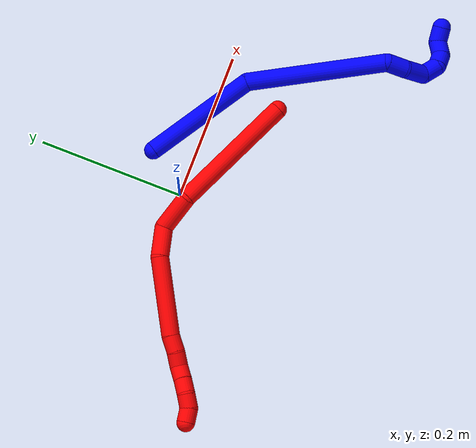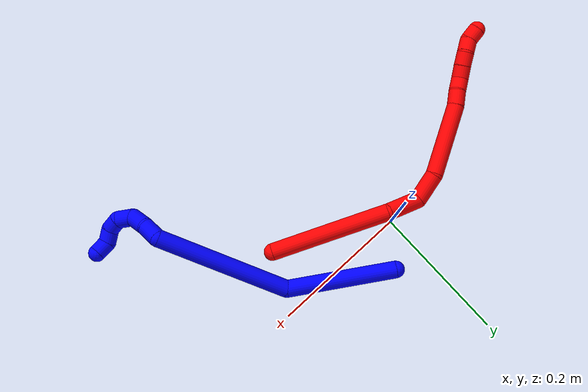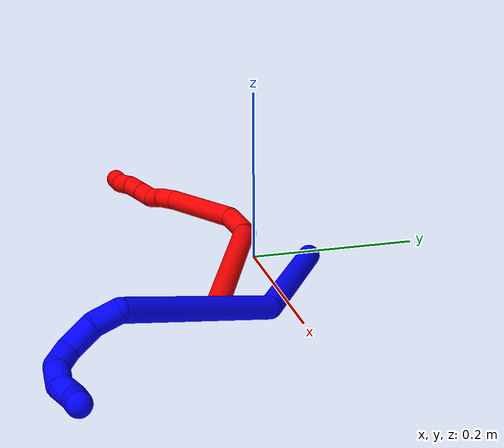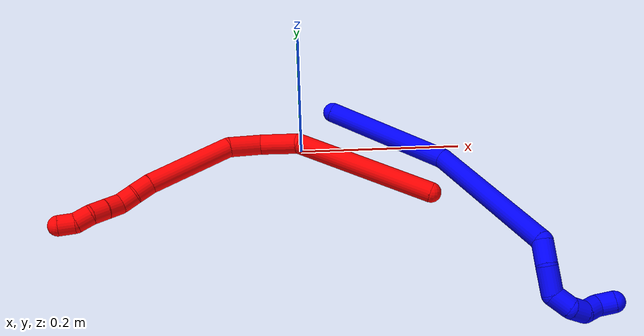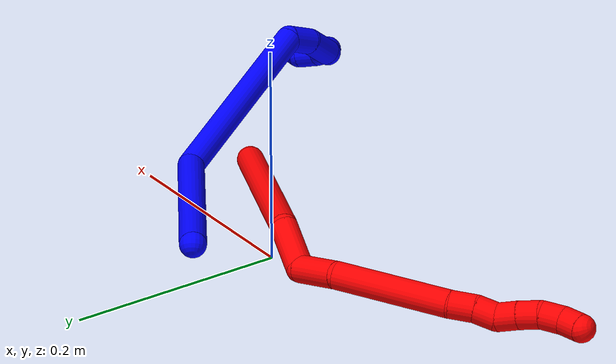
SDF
<sdf version="1.7">
 <world name="default">
  <plugin name="TubeGeneratorPlugin" filename="libtube_generator_plugin.so"/>
  <model name="photoneo_s_sensor">
   <static>1</static>
   <pose>0 0 2 1.57079 1.57079 3.14159</pose>
   <link name="link">
    <inertial><mass>0.1</mass></inertial>
    <sensor name="sensor" type="depth">
     <update_rate>30</update_rate>
     <camera>
      <horizontal_fov>1.22</horizontal_fov>
      <image><width>1920</width><height>1200</height><format>B8G8R8</format></image>
      <clip><near>0.1</near><far>4</far></clip>
      <depth_camera><output>points</output></depth_camera>
     </camera>
     <plugin name="camera_plugin" filename="libgazebo_ros_depth_camera.so">
      <baseline>0.2</baseline>
      <alwaysOn>1</alwaysOn>
      <updateRate>0.0</updateRate>
      <cameraName>camera_ir</cameraName>
      <imageTopicName>/camera/color/image_raw</imageTopicName>
      <cameraInfoTopicName>/camera/color/camera_info</cameraInfoTopicName>
      <depthImageTopicName>/camera/depth/image_raw</depthImageTopicName>
      <depthImageCameraInfoTopicName>/camera/depth/camera_info</depthImageCameraInfoTopicName>
      <pointCloudTopicName>/camera/depth/points</pointCloudTopicName>
      <frameName>fr_optical</frameName>
      <pointCloudCutoff>0.1</pointCloudCutoff>
      <pointCloudCutoffMax>2.0</pointCloudCutoffMax>
      <distortionK1>0</distortionK1>
      <distortionK2>0</distortionK2>
      <distortionK3>0</distortionK3>
      <distortionT1>0</distortionT1>
      <distortionT2>0</distortionT2>
      <CxPrime>0</CxPrime>
      <Cx>0</Cx>
      <Cy>0</Cy>
      <focalLength>0</focalLength>
      <hackBaseline>0</hackBaseline>
     </plugin>
    </sensor>
   </link>
  </model>
  <gravity>0 0 -9.8</gravity>
  <magnetic_field>6e-06 2.3e-05 -4.2e-05</magnetic_field>
  <atmosphere type="adiabatic"/>
  <physics name="default_physics" default="0" type="ode">
   <max_step_size>0.003</max_step_size>
   <real_time_factor>1</real_time_factor>
   <real_time_update_rate>1000</real_time_update_rate>
   <max_contacts>10000</max_contacts>
   <ode>
    <solver>
     <type>quick</type>
     <iters>100</iters>
     <sor>1.3</sor>
     <use_dynamic_moi_rescaling>0</use_dynamic_moi_rescaling>
    </solver>
    <constraints>
     <contact_max_correcting_vel>0</contact_max_correcting_vel>
     <contact_surface_layer>0.001</contact_surface_layer>
     <cfm>0</cfm>
     <erp>0.2</erp>
    </constraints>
   </ode>
  </physics>
  <scene><ambient>0.4 0.4 0.4 1</ambient><background>0.7 0.7 0.7 1</background><shadows>0</shadows></scene>
  <audio><device>default</device></audio>
  <spherical_coordinates>
   <surface_model>EARTH_WGS84</surface_model>
   <latitude_deg>0</latitude_deg>
   <longitude_deg>0</longitude_deg>
   <elevation>0</elevation>
   <heading_deg>0</heading_deg>
  </spherical_coordinates>
  <model name="bin">
   <static>1</static>
   <link name="bottom">
    <collision name="collision-bottom">
     <pose>0 0 -0.01 0 -0 0</pose>
     <geometry><box><size>0.8 0.6 0.02</size></box></geometry>
     <surface>
      <friction><ode><mu>100</mu><mu2>100</mu2></ode></friction>
      <contact><collide_bitmask>65535</collide_bitmask></contact>
     </surface>
    </collision>
   </link>
   <link name="west_wall">
    <collision name="collision-west_wall">
     <pose>-0.41 0 0.1 0 -0 0</pose>
     <geometry><box><size>0.02 0.6 0.2</size></box></geometry>
     <surface>
      <friction><ode><mu>100</mu><mu2>100</mu2></ode></friction>
      <contact><collide_bitmask>65535</collide_bitmask></contact>
     </surface>
    </collision>
   </link>
   <link name="east_wall">
    <collision name="collision-east_wall">
     <pose>0.41 0 0.1 0 -0 0</pose>
     <geometry><box><size>0.02 0.6 0.2</size></box></geometry>
     <surface>
      <friction><ode><mu>100</mu><mu2>100</mu2></ode></friction>
      <contact><collide_bitmask>65535</collide_bitmask></contact>
     </surface>
    </collision>
   </link>
   <link name="south_wall">
    <collision name="collision-south_wall">
     <pose>0 -0.31 0.1 0 -0 0</pose>
     <geometry><box><size>0.8 0.02 0.2</size></box></geometry>
     <surface>
      <friction><ode><mu>100</mu><mu2>100</mu2></ode></friction>
      <contact><collide_bitmask>65535</collide_bitmask></contact>
     </surface>
    </collision>
   </link>
   <link name="north_wall">
    <collision name="collision-north_wall">
     <pose>0 0.31 0.1 0 -0 0</pose>
     <geometry><box><size>0.8 0.02 0.2</size></box></geometry>
     <surface>
      <friction><ode><mu>100</mu><mu2>100</mu2></ode></friction>
      <contact><collide_bitmask>65535</collide_bitmask></contact>
     </surface>
    </collision>
   </link>
  </model>
  <model name="1">
   <static>0</static>
   <link name="1">
    <collision name="collision-cylinder-e_1_1_4">
     <pose>0.045665 -0.022618 0.060263 0.359054 0.617034 0.115545</pose>
     <geometry><cylinder><radius>0.0125</radius><length>0.157841</length></cylinder></geometry>
     <surface>
      <friction><ode><mu>1.16</mu><mu2>1.16</mu2><slip1>0</slip1><slip2>0</slip2></ode></friction>
      <contact><ode><kp>1e+06</kp><kd>1</kd><max_vel>0</max_vel><min_depth>0.001</min_depth></ode></contact>
     </surface>
    </collision>
    <visual name="visual-cylinder-e_1_1_4">
     <pose>0.045665 -0.022618 0.060263 0.359054 0.617034 0.115545</pose>
     <geometry><cylinder><radius>0.0125</radius><length>0.157841</length></cylinder></geometry>
     <material><ambient>0 0 1 1</ambient></material>
    </visual>
    <collision name="collision-cylinder-e_2_4_5">
     <pose>0.097744 -0.100407 0.20195 0.595515 0.065123 0.019991</pose>
     <geometry><cylinder><radius>0.0125</radius><length>0.197129</length></cylinder></geometry>
     <surface>
      <friction><ode><mu>1.16</mu><mu2>1.16</mu2><slip1>0</slip1><slip2>0</slip2></ode></friction>
      <contact><ode><kp>1e+06</kp><kd>1</kd><max_vel>0</max_vel><min_depth>0.001</min_depth></ode></contact>
     </surface>
    </collision>
    <visual name="visual-cylinder-e_2_4_5">
     <pose>0.097744 -0.100407 0.20195 0.595515 0.065123 0.019991</pose>
     <geometry><cylinder><radius>0.0125</radius><length>0.197129</length></cylinder></geometry>
     <material><ambient>0 0 1 1</ambient></material>
    </visual>
    <collision name="collision-cylinder-e_3_5_6">
     <pose>0.106977 -0.168749 0.28636 1.34789 0.205785 0.16457</pose>
     <geometry><cylinder><radius>0.0125</radius><length>0.027592</length></cylinder></geometry>
     <surface>
      <friction><ode><mu>1.16</mu><mu2>1.16</mu2><slip1>0</slip1><slip2>0</slip2></ode></friction>
      <contact><ode><kp>1e+06</kp><kd>1</kd><max_vel>0</max_vel><min_depth>0.001</min_depth></ode></contact>
     </surface>
    </collision>
    <visual name="visual-cylinder-e_3_5_6">
     <pose>0.106977 -0.168749 0.28636 1.34789 0.205785 0.16457</pose>
     <geometry><cylinder><radius>0.0125</radius><length>0.027592</length></cylinder></geometry>
     <material><ambient>0 0 1 1</ambient></material>
    </visual>
    <collision name="collision-cylinder-e_4_6_7">
     <pose>0.117037 -0.196542 0.289902 1.53271 0.459469 0.442862</pose>
     <geometry><cylinder><radius>0.0125</radius><length>0.032653</length></cylinder></geometry>
     <surface>
      <friction><ode><mu>1.16</mu><mu2>1.16</mu2><slip1>0</slip1><slip2>0</slip2></ode></friction>
      <contact><ode><kp>1e+06</kp><kd>1</kd><max_vel>0</max_vel><min_depth>0.001</min_depth></ode></contact>
     </surface>
    </collision>
    <visual name="visual-cylinder-e_4_6_7">
     <pose>0.117037 -0.196542 0.289902 1.53271 0.459469 0.442862</pose>
     <geometry><cylinder><radius>0.0125</radius><length>0.032653</length></cylinder></geometry>
     <material><ambient>0 0 1 1</ambient></material>
    </visual>
    <collision name="collision-cylinder-e_5_7_8">
     <pose>0.132743 -0.21637 0.296959 0.675202 0.793688 0.292131</pose>
     <geometry><cylinder><radius>0.0125</radius><length>0.023748</length></cylinder></geometry>
     <surface>
      <friction><ode><mu>1.16</mu><mu2>1.16</mu2><slip1>0</slip1><slip2>0</slip2></ode></friction>
      <contact><ode><kp>1e+06</kp><kd>1</kd><max_vel>0</max_vel><min_depth>0.001</min_depth></ode></contact>
     </surface>
    </collision>
    <visual name="visual-cylinder-e_5_7_8">
     <pose>0.132743 -0.21637 0.296959 0.675202 0.793688 0.292131</pose>
     <geometry><cylinder><radius>0.0125</radius><length>0.023748</length></cylinder></geometry>
     <material><ambient>0 0 1 1</ambient></material>
    </visual>
    <collision name="collision-cylinder-e_6_8_9">
     <pose>0.15118 -0.22153 0.305314 -0.023571 1.38676 -0.019589</pose>
     <geometry><cylinder><radius>0.0125</radius><length>0.020285</length></cylinder></geometry>
     <surface>
      <friction><ode><mu>1.16</mu><mu2>1.16</mu2><slip1>0</slip1><slip2>0</slip2></ode></friction>
      <contact><ode><kp>1e+06</kp><kd>1</kd><max_vel>0</max_vel><min_depth>0.001</min_depth></ode></contact>
     </surface>
    </collision>
    <visual name="visual-cylinder-e_6_8_9">
     <pose>0.15118 -0.22153 0.305314 -0.023571 1.38676 -0.019589</pose>
     <geometry><cylinder><radius>0.0125</radius><length>0.020285</length></cylinder></geometry>
     <material><ambient>0 0 1 1</ambient></material>
    </visual>
    <collision name="collision-cylinder-e_7_9_10">
     <pose>0.169456 -0.215837 0.308215 -1.38786 0.965619 -0.82248</pose>
     <geometry><cylinder><radius>0.0125</radius><length>0.020196</length></cylinder></geometry>
     <surface>
      <friction><ode><mu>1.16</mu><mu2>1.16</mu2><slip1>0</slip1><slip2>0</slip2></ode></friction>
      <contact><ode><kp>1e+06</kp><kd>1</kd><max_vel>0</max_vel><min_depth>0.001</min_depth></ode></contact>
     </surface>
    </collision>
    <visual name="visual-cylinder-e_7_9_10">
     <pose>0.169456 -0.215837 0.308215 -1.38786 0.965619 -0.82248</pose>
     <geometry><cylinder><radius>0.0125</radius><length>0.020196</length></cylinder></geometry>
     <material><ambient>0 0 1 1</ambient></material>
    </visual>
    <collision name="collision-cylinder-e_8_10_2">
     <pose>0.184403 -0.206316 0.31608 -0.51636 0.70277 -0.193016</pose>
     <geometry><cylinder><radius>0.0125</radius><length>0.020555</length></cylinder></geometry>
     <surface>
      <friction><ode><mu>1.16</mu><mu2>1.16</mu2><slip1>0</slip1><slip2>0</slip2></ode></friction>
      <contact><ode><kp>1e+06</kp><kd>1</kd><max_vel>0</max_vel><min_depth>0.001</min_depth></ode></contact>
     </surface>
    </collision>
    <visual name="visual-cylinder-e_8_10_2">
     <pose>0.184403 -0.206316 0.31608 -0.51636 0.70277 -0.193016</pose>
     <geometry><cylinder><radius>0.0125</radius><length>0.020555</length></cylinder></geometry>
     <material><ambient>0 0 1 1</ambient></material>
    </visual>
    <collision name="collision-sphere-2">
     <pose>0.191046 -0.202445 0.3229 0 -0 0</pose>
     <geometry><sphere><radius>0.0125</radius></sphere></geometry>
     <surface>
      <friction><ode><mu>1.16</mu><mu2>1.16</mu2><slip1>0</slip1><slip2>0</slip2></ode></friction>
      <contact><ode><kp>1e+06</kp><kd>1</kd><max_vel>0</max_vel><min_depth>0.001</min_depth></ode></contact>
     </surface>
    </collision>
    <visual name="visual-sphere-2">
     <pose>0.191046 -0.202445 0.3229 0 -0 0</pose>
     <geometry><sphere><radius>0.0125</radius></sphere></geometry>
     <material><ambient>0 0 1 1</ambient></material>
    </visual>
    <collision name="collision-sphere-10">
     <pose>0.17776 -0.210188 0.30926 0 -0 0</pose>
     <geometry><sphere><radius>0.0125</radius></sphere></geometry>
     <surface>
      <friction><ode><mu>1.16</mu><mu2>1.16</mu2><slip1>0</slip1><slip2>0</slip2></ode></friction>
      <contact><ode><kp>1e+06</kp><kd>1</kd><max_vel>0</max_vel><min_depth>0.001</min_depth></ode></contact>
     </surface>
    </collision>
    <visual name="visual-sphere-10">
     <pose>0.17776 -0.210188 0.30926 0 -0 0</pose>
     <geometry><sphere><radius>0.0125</radius></sphere></geometry>
     <material><ambient>0 0 1 1</ambient></material>
    </visual>
    <collision name="collision-sphere-9">
     <pose>0.161151 -0.221487 0.307169 0 -0 0</pose>
     <geometry><sphere><radius>0.0125</radius></sphere></geometry>
     <surface>
      <friction><ode><mu>1.16</mu><mu2>1.16</mu2><slip1>0</slip1><slip2>0</slip2></ode></friction>
      <contact><ode><kp>1e+06</kp><kd>1</kd><max_vel>0</max_vel><min_depth>0.001</min_depth></ode></contact>
     </surface>
    </collision>
    <visual name="visual-sphere-9">
     <pose>0.161151 -0.221487 0.307169 0 -0 0</pose>
     <geometry><sphere><radius>0.0125</radius></sphere></geometry>
     <material><ambient>0 0 1 1</ambient></material>
    </visual>
    <collision name="collision-sphere-4">
     <pose>0.09133 -0.045236 0.120525 0 -0 0</pose>
     <geometry><sphere><radius>0.0125</radius></sphere></geometry>
     <surface>
      <friction><ode><mu>1.16</mu><mu2>1.16</mu2><slip1>0</slip1><slip2>0</slip2></ode></friction>
      <contact><ode><kp>1e+06</kp><kd>1</kd><max_vel>0</max_vel><min_depth>0.001</min_depth></ode></contact>
     </surface>
    </collision>
    <visual name="visual-sphere-4">
     <pose>0.09133 -0.045236 0.120525 0 -0 0</pose>
     <geometry><sphere><radius>0.0125</radius></sphere></geometry>
     <material><ambient>0 0 1 1</ambient></material>
    </visual>
    <collision name="collision-sphere-1">
     <geometry><sphere><radius>0.0125</radius></sphere></geometry>
     <surface>
      <friction><ode><mu>1.16</mu><mu2>1.16</mu2><slip1>0</slip1><slip2>0</slip2></ode></friction>
      <contact><ode><kp>1e+06</kp><kd>1</kd><max_vel>0</max_vel><min_depth>0.001</min_depth></ode></contact>
     </surface>
    </collision>
    <visual name="visual-sphere-1">
     <geometry><sphere><radius>0.0125</radius></sphere></geometry>
     <material><ambient>0 0 1 1</ambient></material>
    </visual>
    <collision name="collision-sphere-8">
     <pose>0.141208 -0.221574 0.303458 0 -0 0</pose>
     <geometry><sphere><radius>0.0125</radius></sphere></geometry>
     <surface>
      <friction><ode><mu>1.16</mu><mu2>1.16</mu2><slip1>0</slip1><slip2>0</slip2></ode></friction>
      <contact><ode><kp>1e+06</kp><kd>1</kd><max_vel>0</max_vel><min_depth>0.001</min_depth></ode></contact>
     </surface>
    </collision>
    <visual name="visual-sphere-8">
     <pose>0.141208 -0.221574 0.303458 0 -0 0</pose>
     <geometry><sphere><radius>0.0125</radius></sphere></geometry>
     <material><ambient>0 0 1 1</ambient></material>
    </visual>
    <collision name="collision-sphere-5">
     <pose>0.104158 -0.155578 0.283374 0 -0 0</pose>
     <geometry><sphere><radius>0.0125</radius></sphere></geometry>
     <surface>
      <friction><ode><mu>1.16</mu><mu2>1.16</mu2><slip1>0</slip1><slip2>0</slip2></ode></friction>
      <contact><ode><kp>1e+06</kp><kd>1</kd><max_vel>0</max_vel><min_depth>0.001</min_depth></ode></contact>
     </surface>
    </collision>
    <visual name="visual-sphere-5">
     <pose>0.104158 -0.155578 0.283374 0 -0 0</pose>
     <geometry><sphere><radius>0.0125</radius></sphere></geometry>
     <material><ambient>0 0 1 1</ambient></material>
    </visual>
    <collision name="collision-sphere-6">
     <pose>0.109796 -0.18192 0.289345 0 -0 0</pose>
     <geometry><sphere><radius>0.0125</radius></sphere></geometry>
     <surface>
      <friction><ode><mu>1.16</mu><mu2>1.16</mu2><slip1>0</slip1><slip2>0</slip2></ode></friction>
      <contact><ode><kp>1e+06</kp><kd>1</kd><max_vel>0</max_vel><min_depth>0.001</min_depth></ode></contact>
     </surface>
    </collision>
    <visual name="visual-sphere-6">
     <pose>0.109796 -0.18192 0.289345 0 -0 0</pose>
     <geometry><sphere><radius>0.0125</radius></sphere></geometry>
     <material><ambient>0 0 1 1</ambient></material>
    </visual>
    <collision name="collision-sphere-7">
     <pose>0.124277 -0.211165 0.29046 0 -0 0</pose>
     <geometry><sphere><radius>0.0125</radius></sphere></geometry>
     <surface>
      <friction><ode><mu>1.16</mu><mu2>1.16</mu2><slip1>0</slip1><slip2>0</slip2></ode></friction>
      <contact><ode><kp>1e+06</kp><kd>1</kd><max_vel>0</max_vel><min_depth>0.001</min_depth></ode></contact>
     </surface>
    </collision>
    <visual name="visual-sphere-7">
     <pose>0.124277 -0.211165 0.29046 0 -0 0</pose>
     <geometry><sphere><radius>0.0125</radius></sphere></geometry>
     <material><ambient>0 0 1 1</ambient></material>
    </visual>
    <inertial>
     <pose>0.093362 -0.105338 0.185314 0 -0 0</pose>
     <mass>0.5</mass>
     <inertia>
      <ixx>0.000985</ixx>
      <ixy>0</ixy>
      <ixz>0</ixz>
      <iyy>0.000891</iyy>
      <iyz>0</iyz>
      <izz>0.000246</izz>
     </inertia>
    </inertial>
   </link>
   <pose>0.042922 0.055149 0.01198 0.54951 0.712192 0.131252</pose>
  </model>
  <model name="2">
   <static>0</static>
   <link name="2">
    <collision name="collision-cylinder-e_1_1_4">
     <pose>-0.064248 0.01531 0.056798 -0.263286 -0.82943 0.116454</pose>
     <geometry><cylinder><radius>0.0125</radius><length>0.174222</length></cylinder></geometry>
     <surface>
      <friction><ode><mu>1.16</mu><mu2>1.16</mu2><slip1>0</slip1><slip2>0</slip2></ode></friction>
      <contact><ode><kp>1e+06</kp><kd>1</kd><max_vel>0</max_vel><min_depth>0.001</min_depth></ode></contact>
     </surface>
    </collision>
    <visual name="visual-cylinder-e_1_1_4">
     <pose>-0.064248 0.01531 0.056798 -0.263286 -0.82943 0.116454</pose>
     <geometry><cylinder><radius>0.0125</radius><length>0.174222</length></cylinder></geometry>
     <material><ambient>1 0 0 1</ambient></material>
    </visual>
    <collision name="collision-cylinder-e_2_4_5">
     <pose>-0.149907 0.024485 0.127164 0.424628 -0.963155 -0.224368</pose>
     <geometry><cylinder><radius>0.0125</radius><length>0.052157</length></cylinder></geometry>
     <surface>
      <friction><ode><mu>1.16</mu><mu2>1.16</mu2><slip1>0</slip1><slip2>0</slip2></ode></friction>
      <contact><ode><kp>1e+06</kp><kd>1</kd><max_vel>0</max_vel><min_depth>0.001</min_depth></ode></contact>
     </surface>
    </collision>
    <visual name="visual-cylinder-e_2_4_5">
     <pose>-0.149907 0.024485 0.127164 0.424628 -0.963155 -0.224368</pose>
     <geometry><cylinder><radius>0.0125</radius><length>0.052157</length></cylinder></geometry>
     <material><ambient>1 0 0 1</ambient></material>
    </visual>
    <collision name="collision-cylinder-e_3_5_6">
     <pose>-0.176508 0.01616 0.161331 0.10597 -0.245507 -0.013086</pose>
     <geometry><cylinder><radius>0.0125</radius><length>0.042714</length></cylinder></geometry>
     <surface>
      <friction><ode><mu>1.16</mu><mu2>1.16</mu2><slip1>0</slip1><slip2>0</slip2></ode></friction>
      <contact><ode><kp>1e+06</kp><kd>1</kd><max_vel>0</max_vel><min_depth>0.001</min_depth></ode></contact>
     </surface>
    </collision>
    <visual name="visual-cylinder-e_3_5_6">
     <pose>-0.176508 0.01616 0.161331 0.10597 -0.245507 -0.013086</pose>
     <geometry><cylinder><radius>0.0125</radius><length>0.042714</length></cylinder></geometry>
     <material><ambient>1 0 0 1</ambient></material>
    </visual>
    <collision name="collision-cylinder-e_4_6_7">
     <pose>-0.187259 -0.008251 0.230788 0.426839 -0.103225 -0.02239</pose>
     <geometry><cylinder><radius>0.0125</radius><length>0.107919</length></cylinder></geometry>
     <surface>
      <friction><ode><mu>1.16</mu><mu2>1.16</mu2><slip1>0</slip1><slip2>0</slip2></ode></friction>
      <contact><ode><kp>1e+06</kp><kd>1</kd><max_vel>0</max_vel><min_depth>0.001</min_depth></ode></contact>
     </surface>
    </collision>
    <visual name="visual-cylinder-e_4_6_7">
     <pose>-0.187259 -0.008251 0.230788 0.426839 -0.103225 -0.02239</pose>
     <geometry><cylinder><radius>0.0125</radius><length>0.107919</length></cylinder></geometry>
     <material><ambient>1 0 0 1</ambient></material>
    </visual>
    <collision name="collision-cylinder-e_5_7_8">
     <pose>-0.192263 -0.036071 0.289529 0.515459 0.048933 0.012901</pose>
     <geometry><cylinder><radius>0.0125</radius><length>0.022748</length></cylinder></geometry>
     <surface>
      <friction><ode><mu>1.16</mu><mu2>1.16</mu2><slip1>0</slip1><slip2>0</slip2></ode></friction>
      <contact><ode><kp>1e+06</kp><kd>1</kd><max_vel>0</max_vel><min_depth>0.001</min_depth></ode></contact>
     </surface>
    </collision>
    <visual name="visual-cylinder-e_5_7_8">
     <pose>-0.192263 -0.036071 0.289529 0.515459 0.048933 0.012901</pose>
     <geometry><cylinder><radius>0.0125</radius><length>0.022748</length></cylinder></geometry>
     <material><ambient>1 0 0 1</ambient></material>
    </visual>
    <collision name="collision-cylinder-e_6_8_9">
     <pose>-0.192864 -0.047538 0.307546 0.62496 -0.114893 -0.037154</pose>
     <geometry><cylinder><radius>0.0125</radius><length>0.020189</length></cylinder></geometry>
     <surface>
      <friction><ode><mu>1.16</mu><mu2>1.16</mu2><slip1>0</slip1><slip2>0</slip2></ode></friction>
      <contact><ode><kp>1e+06</kp><kd>1</kd><max_vel>0</max_vel><min_depth>0.001</min_depth></ode></contact>
     </surface>
    </collision>
    <visual name="visual-cylinder-e_6_8_9">
     <pose>-0.192864 -0.047538 0.307546 0.62496 -0.114893 -0.037154</pose>
     <geometry><cylinder><radius>0.0125</radius><length>0.020189</length></cylinder></geometry>
     <material><ambient>1 0 0 1</ambient></material>
    </visual>
    <collision name="collision-cylinder-e_7_9_10">
     <pose>-0.192594 -0.05548 0.325368 0.210871 0.143066 0.015166</pose>
     <geometry><cylinder><radius>0.0125</radius><length>0.020022</length></cylinder></geometry>
     <surface>
      <friction><ode><mu>1.16</mu><mu2>1.16</mu2><slip1>0</slip1><slip2>0</slip2></ode></friction>
      <contact><ode><kp>1e+06</kp><kd>1</kd><max_vel>0</max_vel><min_depth>0.001</min_depth></ode></contact>
     </surface>
    </collision>
    <visual name="visual-cylinder-e_7_9_10">
     <pose>-0.192594 -0.05548 0.325368 0.210871 0.143066 0.015166</pose>
     <geometry><cylinder><radius>0.0125</radius><length>0.020022</length></cylinder></geometry>
     <material><ambient>1 0 0 1</ambient></material>
    </visual>
    <collision name="collision-cylinder-e_8_10_11">
     <pose>-0.190422 -0.059943 0.344744 0.241837 0.074506 0.009057</pose>
     <geometry><cylinder><radius>0.0125</radius><length>0.02001</length></cylinder></geometry>
     <surface>
      <friction><ode><mu>1.16</mu><mu2>1.16</mu2><slip1>0</slip1><slip2>0</slip2></ode></friction>
      <contact><ode><kp>1e+06</kp><kd>1</kd><max_vel>0</max_vel><min_depth>0.001</min_depth></ode></contact>
     </surface>
    </collision>
    <visual name="visual-cylinder-e_8_10_11">
     <pose>-0.190422 -0.059943 0.344744 0.241837 0.074506 0.009057</pose>
     <geometry><cylinder><radius>0.0125</radius><length>0.02001</length></cylinder></geometry>
     <material><ambient>1 0 0 1</ambient></material>
    </visual>
    <collision name="collision-cylinder-e_9_11_12">
     <pose>-0.190346 -0.067032 0.363235 0.490283 -0.066983 -0.016763</pose>
     <geometry><cylinder><radius>0.0125</radius><length>0.020005</length></cylinder></geometry>
     <surface>
      <friction><ode><mu>1.16</mu><mu2>1.16</mu2><slip1>0</slip1><slip2>0</slip2></ode></friction>
      <contact><ode><kp>1e+06</kp><kd>1</kd><max_vel>0</max_vel><min_depth>0.001</min_depth></ode></contact>
     </surface>
    </collision>
    <visual name="visual-cylinder-e_9_11_12">
     <pose>-0.190346 -0.067032 0.363235 0.490283 -0.066983 -0.016763</pose>
     <geometry><cylinder><radius>0.0125</radius><length>0.020005</length></cylinder></geometry>
     <material><ambient>1 0 0 1</ambient></material>
    </visual>
    <collision name="collision-cylinder-e_10_12_2">
     <pose>-0.194887 -0.073812 0.38103 0.227486 -0.397168 -0.045969</pose>
     <geometry><cylinder><radius>0.0125</radius><length>0.020014</length></cylinder></geometry>
     <surface>
      <friction><ode><mu>1.16</mu><mu2>1.16</mu2><slip1>0</slip1><slip2>0</slip2></ode></friction>
      <contact><ode><kp>1e+06</kp><kd>1</kd><max_vel>0</max_vel><min_depth>0.001</min_depth></ode></contact>
     </surface>
    </collision>
    <visual name="visual-cylinder-e_10_12_2">
     <pose>-0.194887 -0.073812 0.38103 0.227486 -0.397168 -0.045969</pose>
     <geometry><cylinder><radius>0.0125</radius><length>0.020014</length></cylinder></geometry>
     <material><ambient>1 0 0 1</ambient></material>
    </visual>
    <collision name="collision-sphere-2">
     <pose>-0.198757 -0.075894 0.39002 0 -0 0</pose>
     <geometry><sphere><radius>0.0125</radius></sphere></geometry>
     <surface>
      <friction><ode><mu>1.16</mu><mu2>1.16</mu2><slip1>0</slip1><slip2>0</slip2></ode></friction>
      <contact><ode><kp>1e+06</kp><kd>1</kd><max_vel>0</max_vel><min_depth>0.001</min_depth></ode></contact>
     </surface>
    </collision>
    <visual name="visual-sphere-2">
     <pose>-0.198757 -0.075894 0.39002 0 -0 0</pose>
     <geometry><sphere><radius>0.0125</radius></sphere></geometry>
     <material><ambient>1 0 0 1</ambient></material>
    </visual>
    <collision name="collision-sphere-12">
     <pose>-0.191016 -0.071731 0.37204 0 -0 0</pose>
     <geometry><sphere><radius>0.0125</radius></sphere></geometry>
     <surface>
      <friction><ode><mu>1.16</mu><mu2>1.16</mu2><slip1>0</slip1><slip2>0</slip2></ode></friction>
      <contact><ode><kp>1e+06</kp><kd>1</kd><max_vel>0</max_vel><min_depth>0.001</min_depth></ode></contact>
     </surface>
    </collision>
    <visual name="visual-sphere-12">
     <pose>-0.191016 -0.071731 0.37204 0 -0 0</pose>
     <geometry><sphere><radius>0.0125</radius></sphere></geometry>
     <material><ambient>1 0 0 1</ambient></material>
    </visual>
    <collision name="collision-sphere-11">
     <pose>-0.189677 -0.062332 0.354431 0 -0 0</pose>
     <geometry><sphere><radius>0.0125</radius></sphere></geometry>
     <surface>
      <friction><ode><mu>1.16</mu><mu2>1.16</mu2><slip1>0</slip1><slip2>0</slip2></ode></friction>
      <contact><ode><kp>1e+06</kp><kd>1</kd><max_vel>0</max_vel><min_depth>0.001</min_depth></ode></contact>
     </surface>
    </collision>
    <visual name="visual-sphere-11">
     <pose>-0.189677 -0.062332 0.354431 0 -0 0</pose>
     <geometry><sphere><radius>0.0125</radius></sphere></geometry>
     <material><ambient>1 0 0 1</ambient></material>
    </visual>
    <collision name="collision-sphere-10">
     <pose>-0.191166 -0.057553 0.335057 0 -0 0</pose>
     <geometry><sphere><radius>0.0125</radius></sphere></geometry>
     <surface>
      <friction><ode><mu>1.16</mu><mu2>1.16</mu2><slip1>0</slip1><slip2>0</slip2></ode></friction>
      <contact><ode><kp>1e+06</kp><kd>1</kd><max_vel>0</max_vel><min_depth>0.001</min_depth></ode></contact>
     </surface>
    </collision>
    <visual name="visual-sphere-10">
     <pose>-0.191166 -0.057553 0.335057 0 -0 0</pose>
     <geometry><sphere><radius>0.0125</radius></sphere></geometry>
     <material><ambient>1 0 0 1</ambient></material>
    </visual>
    <collision name="collision-sphere-9">
     <pose>-0.194021 -0.053406 0.315679 0 -0 0</pose>
     <geometry><sphere><radius>0.0125</radius></sphere></geometry>
     <surface>
      <friction><ode><mu>1.16</mu><mu2>1.16</mu2><slip1>0</slip1><slip2>0</slip2></ode></friction>
      <contact><ode><kp>1e+06</kp><kd>1</kd><max_vel>0</max_vel><min_depth>0.001</min_depth></ode></contact>
     </surface>
    </collision>
    <visual name="visual-sphere-9">
     <pose>-0.194021 -0.053406 0.315679 0 -0 0</pose>
     <geometry><sphere><radius>0.0125</radius></sphere></geometry>
     <material><ambient>1 0 0 1</ambient></material>
    </visual>
    <collision name="collision-sphere-4">
     <pose>-0.128497 0.030619 0.113597 0 -0 0</pose>
     <geometry><sphere><radius>0.0125</radius></sphere></geometry>
     <surface>
      <friction><ode><mu>1.16</mu><mu2>1.16</mu2><slip1>0</slip1><slip2>0</slip2></ode></friction>
      <contact><ode><kp>1e+06</kp><kd>1</kd><max_vel>0</max_vel><min_depth>0.001</min_depth></ode></contact>
     </surface>
    </collision>
    <visual name="visual-sphere-4">
     <pose>-0.128497 0.030619 0.113597 0 -0 0</pose>
     <geometry><sphere><radius>0.0125</radius></sphere></geometry>
     <material><ambient>1 0 0 1</ambient></material>
    </visual>
    <collision name="collision-sphere-1">
     <geometry><sphere><radius>0.0125</radius></sphere></geometry>
     <surface>
      <friction><ode><mu>1.16</mu><mu2>1.16</mu2><slip1>0</slip1><slip2>0</slip2></ode></friction>
      <contact><ode><kp>1e+06</kp><kd>1</kd><max_vel>0</max_vel><min_depth>0.001</min_depth></ode></contact>
     </surface>
    </collision>
    <visual name="visual-sphere-1">
     <geometry><sphere><radius>0.0125</radius></sphere></geometry>
     <material><ambient>1 0 0 1</ambient></material>
    </visual>
    <collision name="collision-sphere-8">
     <pose>-0.191707 -0.041671 0.299414 0 -0 0</pose>
     <geometry><sphere><radius>0.0125</radius></sphere></geometry>
     <surface>
      <friction><ode><mu>1.16</mu><mu2>1.16</mu2><slip1>0</slip1><slip2>0</slip2></ode></friction>
      <contact><ode><kp>1e+06</kp><kd>1</kd><max_vel>0</max_vel><min_depth>0.001</min_depth></ode></contact>
     </surface>
    </collision>
    <visual name="visual-sphere-8">
     <pose>-0.191707 -0.041671 0.299414 0 -0 0</pose>
     <geometry><sphere><radius>0.0125</radius></sphere></geometry>
     <material><ambient>1 0 0 1</ambient></material>
    </visual>
    <collision name="collision-sphere-5">
     <pose>-0.171318 0.018351 0.140731 0 -0 0</pose>
     <geometry><sphere><radius>0.0125</radius></sphere></geometry>
     <surface>
      <friction><ode><mu>1.16</mu><mu2>1.16</mu2><slip1>0</slip1><slip2>0</slip2></ode></friction>
      <contact><ode><kp>1e+06</kp><kd>1</kd><max_vel>0</max_vel><min_depth>0.001</min_depth></ode></contact>
     </surface>
    </collision>
    <visual name="visual-sphere-5">
     <pose>-0.171318 0.018351 0.140731 0 -0 0</pose>
     <geometry><sphere><radius>0.0125</radius></sphere></geometry>
     <material><ambient>1 0 0 1</ambient></material>
    </visual>
    <collision name="collision-sphere-6">
     <pose>-0.181699 0.013969 0.181931 0 -0 0</pose>
     <geometry><sphere><radius>0.0125</radius></sphere></geometry>
     <surface>
      <friction><ode><mu>1.16</mu><mu2>1.16</mu2><slip1>0</slip1><slip2>0</slip2></ode></friction>
      <contact><ode><kp>1e+06</kp><kd>1</kd><max_vel>0</max_vel><min_depth>0.001</min_depth></ode></contact>
     </surface>
    </collision>
    <visual name="visual-sphere-6">
     <pose>-0.181699 0.013969 0.181931 0 -0 0</pose>
     <geometry><sphere><radius>0.0125</radius></sphere></geometry>
     <material><ambient>1 0 0 1</ambient></material>
    </visual>
    <collision name="collision-sphere-7">
     <pose>-0.192819 -0.030471 0.279645 0 -0 0</pose>
     <geometry><sphere><radius>0.0125</radius></sphere></geometry>
     <surface>
      <friction><ode><mu>1.16</mu><mu2>1.16</mu2><slip1>0</slip1><slip2>0</slip2></ode></friction>
      <contact><ode><kp>1e+06</kp><kd>1</kd><max_vel>0</max_vel><min_depth>0.001</min_depth></ode></contact>
     </surface>
    </collision>
    <visual name="visual-sphere-7">
     <pose>-0.192819 -0.030471 0.279645 0 -0 0</pose>
     <geometry><sphere><radius>0.0125</radius></sphere></geometry>
     <material><ambient>1 0 0 1</ambient></material>
    </visual>
    <inertial>
     <pose>-0.140805 -0.006329 0.178852 0 -0 0</pose>
     <mass>0.5</mass>
     <inertia>
      <ixx>0.000448</ixx>
      <ixy>0</ixy>
      <ixz>0</ixz>
      <iyy>0.000593</iyy>
      <iyz>0</iyz>
      <izz>0.000359</izz>
     </inertia>
    </inertial>
   </link>
   <pose>0.155524 -0.082186 0.011499 1.12776 -0.419498 -0.962488</pose>
  </model>
 </world>
</sdf>
